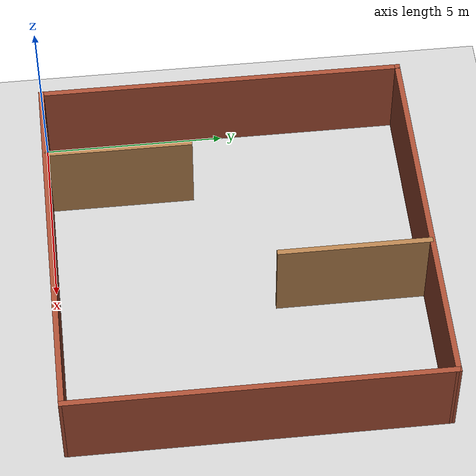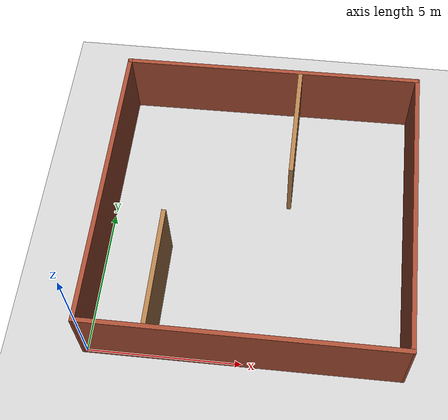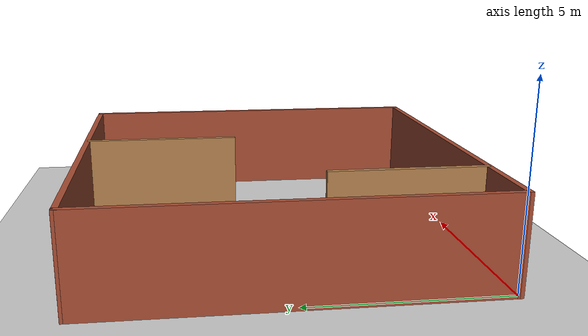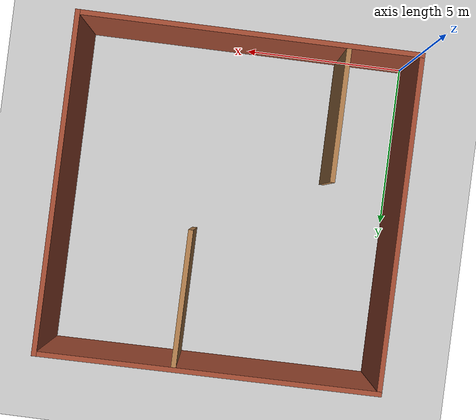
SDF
<sdf version="1.7">
 <world name="default">
  <light name="sun" type="directional">
   <pose>0 0 10 0 -0 0</pose>
   <diffuse>0.8 0.8 0.8 1</diffuse>
   <specular>0.2 0.2 0.2 1</specular>
   <attenuation>
    <range>1000</range>
    <constant>0.9</constant>
    <linear>0.01</linear>
    <quadratic>0.001</quadratic>
   </attenuation>
   <direction>-0.5 0.1 -0.9</direction>
   <spot><inner_angle>0</inner_angle><outer_angle>0</outer_angle><falloff>0</falloff></spot>
  </light>
  <model name="ground_plane">
   <static>1</static>
   <link name="link">
    <collision name="collision">
     <geometry><plane><normal>0 0 1</normal><size>100 100</size></plane></geometry>
     <surface>
      <contact><collide_bitmask>65535</collide_bitmask></contact>
      <friction><ode><mu>100</mu><mu2>50</mu2></ode></friction>
     </surface>
    </collision>
    <visual name="visual">
     <cast_shadows>0</cast_shadows>
     <geometry><plane><normal>0 0 1</normal><size>100 100</size></plane></geometry>
     <material>
      <script><uri>file://media/materials/scripts/gazebo.material</uri><name>Gazebo/Grey</name></script>
     </material>
    </visual>
   </link>
  </model>
  <gravity>0 0 -9.8</gravity>
  <magnetic_field>6e-06 2.3e-05 -4.2e-05</magnetic_field>
  <atmosphere type="adiabatic"/>
  <physics type="ode">
   <max_step_size>0.001</max_step_size>
   <real_time_factor>1</real_time_factor>
   <real_time_update_rate>1000</real_time_update_rate>
  </physics>
  <scene><ambient>0.4 0.4 0.4 1</ambient><background>0.7 0.7 0.7 1</background><shadows>1</shadows></scene>
  <spherical_coordinates>
   <surface_model>EARTH_WGS84</surface_model>
   <latitude_deg>0</latitude_deg>
   <longitude_deg>0</longitude_deg>
   <elevation>0</elevation>
   <heading_deg>0</heading_deg>
  </spherical_coordinates>
  <model name="First_Q_Wall">
   <pose>5.0115 5.05032 0 0 -0 0</pose>
   <link name="Wall_14">
    <collision name="Wall_14_Collision">
     <geometry><box><size>10.237 0.15 2.5</size></box></geometry>
     <pose>0 0 1.25 0 -0 0</pose>
    </collision>
    <visual name="Wall_14_Visual">
     <pose>0 0 1.25 0 -0 0</pose>
     <geometry><box><size>10.237 0.15 2.5</size></box></geometry>
     <material>
      <script><uri>file://media/materials/scripts/gazebo.material</uri><name>Gazebo/Bricks</name></script>
      <ambient>1 1 1 1</ambient>
     </material>
     <meta><layer>0</layer></meta>
    </visual>
    <pose>5.0885 0.006181 0 0 -0 -1.5708</pose>
   </link>
   <link name="Wall_16">
    <collision name="Wall_16_Collision">
     <geometry><box><size>10.327 0.15 2.5</size></box></geometry>
     <pose>0 0 1.25 0 -0 0</pose>
    </collision>
    <visual name="Wall_16_Visual">
     <pose>0 0 1.25 0 -0 0</pose>
     <geometry><box><size>10.327 0.15 2.5</size></box></geometry>
     <material>
      <script><uri>file://media/materials/scripts/gazebo.material</uri><name>Gazebo/Bricks</name></script>
      <ambient>1 1 1 1</ambient>
     </material>
     <meta><layer>0</layer></meta>
    </visual>
    <pose>-0 -5.04382 0 0 -0 0.001277</pose>
   </link>
   <link name="Wall_18">
    <collision name="Wall_18_Collision">
     <geometry><box><size>10.3275 0.15 2.5</size></box></geometry>
     <pose>0 0 1.25 0 -0 0</pose>
    </collision>
    <visual name="Wall_18_Visual">
     <pose>0 0 1.25 0 -0 0</pose>
     <geometry><box><size>10.3275 0.15 2.5</size></box></geometry>
     <material>
      <script><uri>file://media/materials/scripts/gazebo.material</uri><name>Gazebo/Bricks</name></script>
      <ambient>1 1 1 1</ambient>
     </material>
     <meta><layer>0</layer></meta>
    </visual>
    <pose>-0 4.99968 0 0 -0 0.009826</pose>
   </link>
   <link name="Wall_8">
    <collision name="Wall_8_Collision">
     <geometry><box><size>10.15 0.15 2.5</size></box></geometry>
     <pose>0 0 1.25 0 -0 0</pose>
    </collision>
    <visual name="Wall_8_Visual">
     <pose>0 0 1.25 0 -0 0</pose>
     <geometry><box><size>10.15 0.15 2.5</size></box></geometry>
     <material>
      <script><uri>file://media/materials/scripts/gazebo.material</uri><name>Gazebo/Bricks</name></script>
      <ambient>1 1 1 1</ambient>
     </material>
     <meta><layer>0</layer></meta>
    </visual>
    <pose>-5.0885 -0.050319 0 0 -0 -1.5708</pose>
   </link>
   <static>1</static>
  </model>
  <model name="Simple_walls">
   <pose>3.0375 5.0275 0 0 -0 0</pose>
   <link name="Wall_20">
    <collision name="Wall_20_Collision">
     <geometry><box><size>4.045 0.15 2.5</size></box></geometry>
     <pose>0 0 1.25 0 -0 0</pose>
    </collision>
    <visual name="Wall_20_Visual">
     <pose>0 0 1.25 0 -0 0</pose>
     <geometry><box><size>4.045 0.15 2.5</size></box></geometry>
     <material>
      <script><uri>file://media/materials/scripts/gazebo.material</uri><name>Gazebo/Wood</name></script>
      <ambient>1 1 1 1</ambient>
     </material>
     <meta><layer>0</layer></meta>
    </visual>
    <pose>-0.9665 -3.025 0 0 -0 -1.5708</pose>
   </link>
   <link name="Wall_22">
    <collision name="Wall_22_Collision">
     <geometry><box><size>4.15 0.15 2.5</size></box></geometry>
     <pose>0 0 1.25 0 -0 0</pose>
    </collision>
    <visual name="Wall_22_Visual">
     <pose>0 0 1.25 0 -0 0</pose>
     <geometry><box><size>4.15 0.15 2.5</size></box></geometry>
     <material>
      <script><uri>file://media/materials/scripts/gazebo.material</uri><name>Gazebo/Wood</name></script>
      <ambient>1 1 1 1</ambient>
     </material>
     <meta><layer>0</layer></meta>
    </visual>
    <pose>2.9625 2.9725 0 0 -0 -1.5708</pose>
   </link>
   <static>1</static>
  </model>
 </world>
</sdf>
